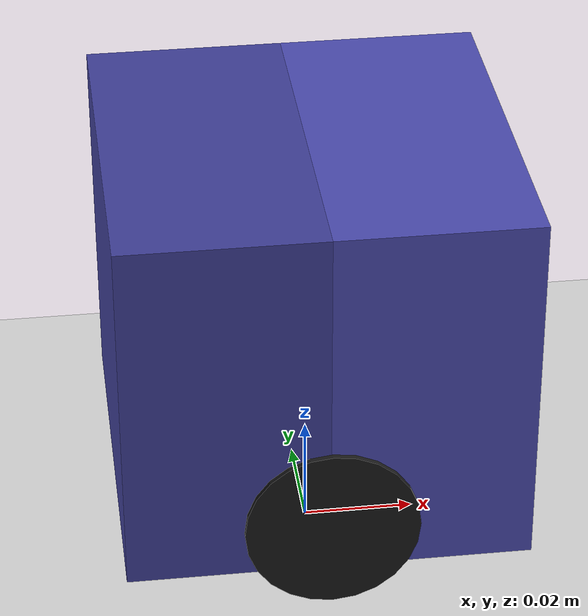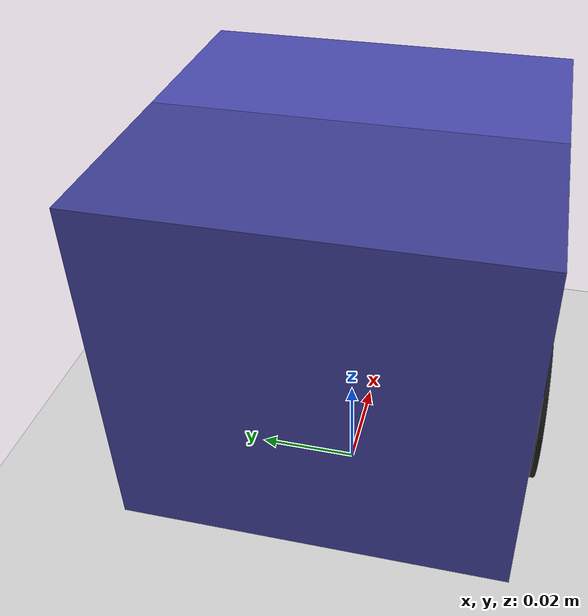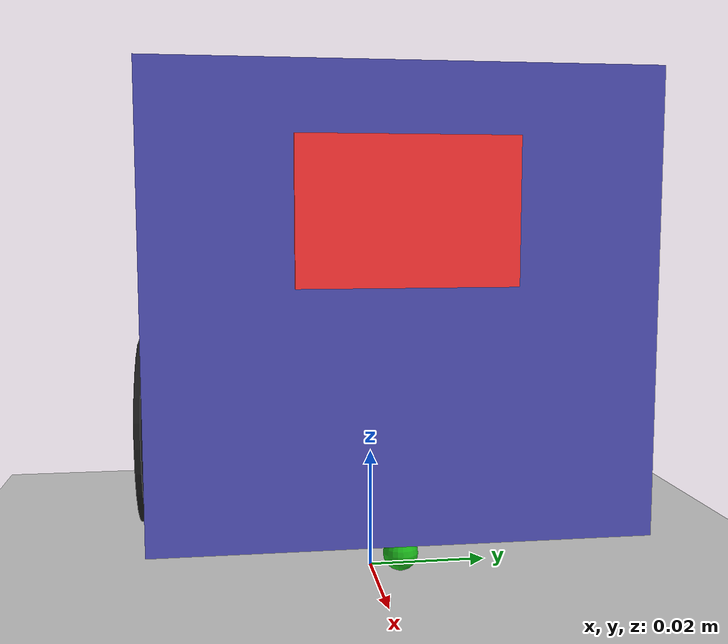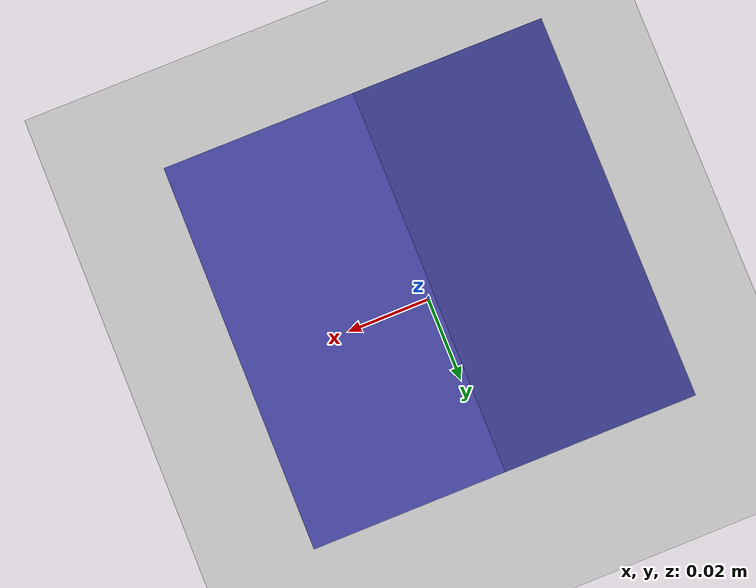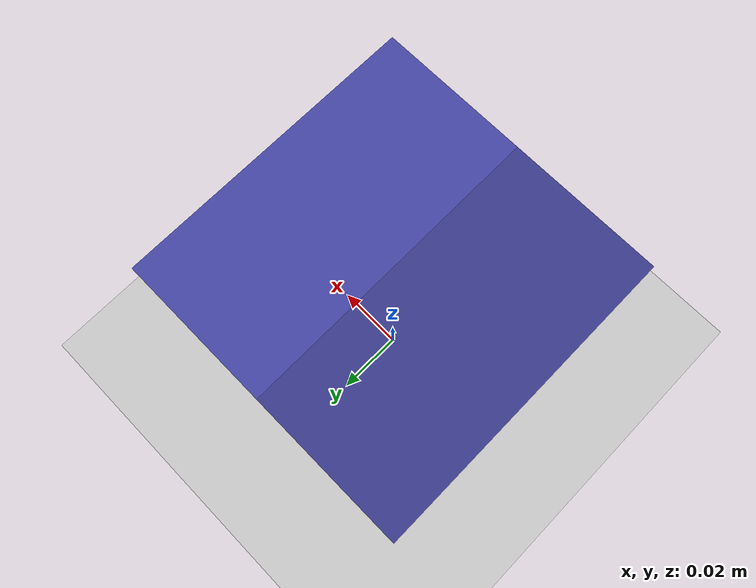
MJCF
<mujoco model="little_car_scene">
  <compiler angle="radian"/>
  <include file="little_car.xml"/>
  <option gravity="0 0 -9.81" timestep="0.002" integrator="implicitfast" cone="elliptic" iterations="100"/>
  <visual>
    <global offwidth="960" offheight="720"/>
    <headlight ambient="0.5 0.5 0.5" diffuse="0.6 0.6 0.6" specular="0.1 0.1 0.1"/>
  </visual>
  <worldbody>
    <light name="sun" pos="0 0 2" dir="0 0 -1" directional="true"/>
    <geom name="ground" type="plane" size="2 2 0.1" rgba="0.85 0.85 0.85 1" friction="0.5 0.005 0.001"/>
    <camera name="overview" pos="0.35 -0.35 0.22" xyaxes="0.707107 0.707107 0 -0.3 0.3 0.905539"/>
    <camera name="forward_is_positive_x" pos="-0.20 -0.22 0.18" xyaxes="0.739940 -0.672673 0 0.380157 0.418173 0.825336"/>
    <camera name="square_path_capture" pos="0.22 -0.26 0.30" xyaxes="0.766044 0.642788 0 -0.454519 0.541675 0.707107"/>
  </worldbody>
</mujoco>

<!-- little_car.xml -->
<mujoco model="little_car">
  <compiler angle="radian" autolimits="true"/>
  <default>
    <geom condim="4"/>
    <joint damping="0.01" armature="0.0001"/>
  </default>
  <worldbody>
    <body name="car" pos="0 0 0.010000">
      <freejoint name="car_freejoint"/>
      <inertial pos="0.000000 0 0.037500" mass="0.350000"
                diaginertia="0.000266 0.000266 0.000286"/>
      <geom name="front_chassis_collision" type="box" pos="0.017500 0 0.037500"
            size="0.017500 0.035000 0.032500"
            rgba="0.3 0.3 0.7 1"/>
      <geom name="rear_chassis_collision" type="box" pos="-0.017500 0 0.037500"
            size="0.017500 0.035000 0.032500"
            rgba="0.25 0.25 0.6 1"/>
      <geom name="front_marker" type="box" pos="0.034000 0 0.050500"
            size="0.002000 0.015000 0.010000"
            rgba="1.0 0.2 0.2 1" contype="0" conaffinity="0"/>

      <body name="rear_support_body" pos="-0.030000 0.000000 0.002500">
        <joint name="rear_caster_joint" type="ball" damping="0.0001"/>
        <inertial pos="0 0 0" mass="0.025000"
                  diaginertia="0.000001 0.000001 0.000001"/>
        <geom name="rear_support" type="sphere"
              pos="0 0 0"
              size="0.002500"
              friction="0.000000 0.000000 0.000000"
              rgba="0.7 0.1 0.1 1"/>
      </body>

      <body name="front_support_body" pos="0.030000 0.000000 0.002500">
        <joint name="front_caster_joint" type="ball" damping="0.0001"/>
        <inertial pos="0 0 0" mass="0.025000"
                  diaginertia="0.000001 0.000001 0.000001"/>
        <geom name="front_support" type="sphere"
              pos="0 0 0"
              size="0.002500"
              friction="0.000000 0.000000 0.000000"
              rgba="0.1 0.7 0.1 1"/>
      </body>

      <body name="left_wheel" pos="0.000000 0.037500 0.015000">
        <inertial pos="0 0 0" mass="0.050000"
                  diaginertia="0.000003 0.000006 0.000003"/>
        <joint name="left_wheel_joint" type="hinge" axis="0 1 0"/>
        <geom name="left_wheel_collision" type="cylinder" size="0.015000 0.000500"
              euler="1.57079632679 0 0" rgba="0.1 0.1 0.1 1"/>
      </body>

      <body name="right_wheel" pos="0.000000 -0.037500 0.015000">
        <inertial pos="0 0 0" mass="0.050000"
                  diaginertia="0.000003 0.000006 0.000003"/>
        <joint name="right_wheel_joint" type="hinge" axis="0 1 0"/>
        <geom name="right_wheel_collision" type="cylinder" size="0.015000 0.000500"
              euler="1.57079632679 0 0" rgba="0.1 0.1 0.1 1"/>
      </body>
    </body>
  </worldbody>
  <actuator>
    <velocity name="left_wheel_drive" joint="left_wheel_joint"
              ctrlrange="-25.000000 25.000000"
              kv="0.750000" forcerange="-0.500000 0.500000"/>
    <velocity name="right_wheel_drive" joint="right_wheel_joint"
              ctrlrange="-25.000000 25.000000"
              kv="0.750000" forcerange="-0.500000 0.500000"/>
  </actuator>
</mujoco>
